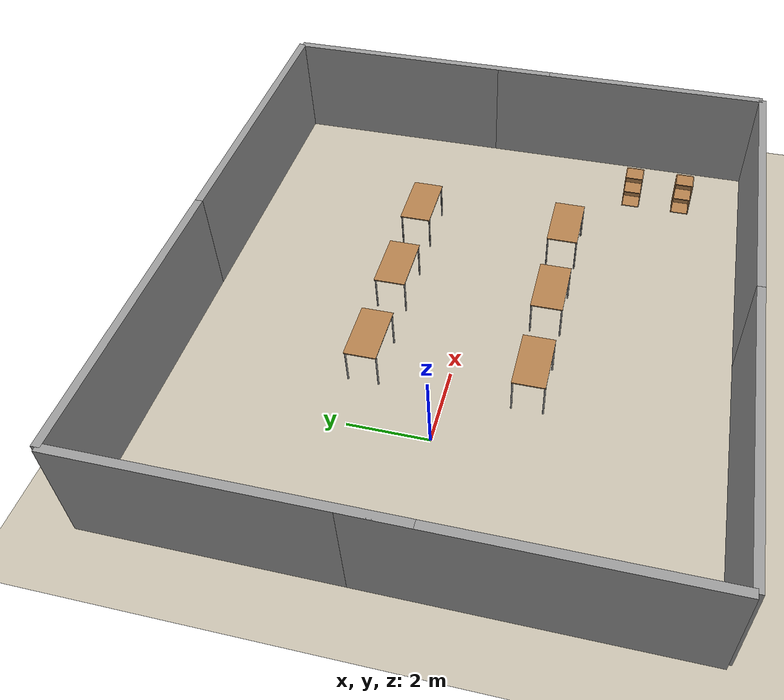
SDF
<sdf version="1.8">
 <world name="h1_world">
  <physics name="1ms" type="ignored">
   <max_step_size>0.001</max_step_size>
   <real_time_factor>1.0</real_time_factor>
  </physics>
  <plugin filename="gz-sim-physics-system" name="gz::sim::systems::Physics"/>
  <plugin filename="gz-sim-user-commands-system" name="gz::sim::systems::UserCommands"/>
  <plugin filename="gz-sim-scene-broadcaster-system" name="gz::sim::systems::SceneBroadcaster"/>
  <plugin filename="gz-sim-contact-system" name="gz::sim::systems::Contact"/>
  <plugin filename="gz-sim-imu-system" name="gz::sim::systems::Imu"/>
  <plugin filename="gz-sim-sensors-system" name="gz::sim::systems::Sensors">
   <render_engine>ogre</render_engine>
  </plugin>
  <scene><ambient>0.65 0.65 0.65 1</ambient><background>0.85 0.86 0.9 1</background></scene>
  <light type="directional" name="sun">
   <pose>0 0 10 0 0 0</pose>
   <diffuse>0.95 0.95 0.95 1</diffuse>
   <specular>0.2 0.2 0.2 1</specular>
   <direction>-0.3 0.3 -0.9</direction>
  </light>
  <model name="ground_plane">
   <static>true</static>
   <link name="link">
    <collision name="collision">
     <geometry><plane><normal>0 0 1</normal><size>100 100</size></plane></geometry>
     <surface><friction><ode><mu>100</mu><mu2>50</mu2></ode></friction></surface>
    </collision>
    <visual name="visual">
     <geometry><plane><normal>0 0 1</normal><size>100 100</size></plane></geometry>
     <material>
      <ambient>0.7 0.68 0.62 1</ambient>
      <diffuse>0.78 0.75 0.68 1</diffuse>
      <specular>0.1 0.1 0.1 1</specular>
     </material>
    </visual>
   </link>
  </model>
  <include><name>wall_l1</name><uri>model://grey_wall</uri><pose>0 6.75 0 0 0 0</pose></include>
  <include><name>wall_l2</name><uri>model://grey_wall</uri><pose>7.5 6.75 0 0 0 0</pose></include>
  <include><name>wall_r1</name><uri>model://grey_wall</uri><pose>0 -6.75 0 0 0 0</pose></include>
  <include><name>wall_r2</name><uri>model://grey_wall</uri><pose>7.5 -6.75 0 0 0 0</pose></include>
  <include><name>wall_back1</name><uri>model://grey_wall</uri><pose>11.25 3 0 0 0 1.5708</pose></include>
  <include><name>wall_back2</name><uri>model://grey_wall</uri><pose>11.25 -3 0 0 0 1.5708</pose></include>
  <include><name>wall_front1</name><uri>model://grey_wall</uri><pose>-3.75 3 0 0 0 1.5708</pose></include>
  <include><name>wall_front2</name><uri>model://grey_wall</uri><pose>-3.75 -3 0 0 0 1.5708</pose></include>
  <include><name>desk_a1</name><uri>model://table</uri><pose>2 2 0 0 0 0</pose></include>
  <include><name>desk_a2</name><uri>model://table</uri><pose>4.5 2 0 0 0 0</pose></include>
  <include><name>desk_a3</name><uri>model://table</uri><pose>7 2 0 0 0 0</pose></include>
  <include><name>desk_b1</name><uri>model://table</uri><pose>2 -2 0 0 0 0</pose></include>
  <include><name>desk_b2</name><uri>model://table</uri><pose>4.5 -2 0 0 0 0</pose></include>
  <include><name>desk_b3</name><uri>model://table</uri><pose>7 -2 0 0 0 0</pose></include>
  <include><name>cabinet_1</name><uri>model://cabinet</uri><pose>9.5 -5 0 0 0 0</pose></include>
  <include><name>cabinet_2</name><uri>model://cabinet</uri><pose>9.5 -3.6 0 0 0 0</pose></include>
 </world>
</sdf>

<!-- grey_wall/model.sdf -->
<sdf version="1.5">
  <model name="grey_wall">
    <static>true</static>
    <link name="link">
      <pose>0 0 1.4 0 0 0</pose>
      <collision name="collision">
        <geometry>
          <box>
            <size>7.5 0.2 2.8</size>
          </box>
        </geometry>
      </collision>
      <visual name="visual">
        <cast_shadows>false</cast_shadows>
        <geometry>
          <box>
            <size>7.5 0.2 2.8</size>
          </box>
        </geometry>
        <material>
          <script>
            <uri>model://../model_source/models/grey_wall/materials/scripts</uri>
            <uri>model://../model_source/models/grey_wall/materials/textures</uri>
            <name>vrc/grey_wall</name>
          </script>
        </material>
      </visual>
    </link>
  </model>
</sdf>

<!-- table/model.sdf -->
<sdf version="1.5">
  <model name="table">
    <static>true</static>
    <link name="link">
      <collision name="surface">
        <pose>0 0 1.0 0 0 0</pose>
        <geometry>
          <box>
            <size>1.5 0.8 0.03</size>
          </box>
        </geometry>
        <surface>
          <friction>
            <ode>
              <mu>0.6</mu>
              <mu2>0.6</mu2>
            </ode>
          </friction>
        </surface>
      </collision>
      <visual name="visual1">
        <pose>0 0 1.0 0 0 0</pose>
        <geometry>
          <box>
            <size>1.5 0.8 0.03</size>
          </box>
        </geometry>
        <material>
          <script>
            <uri>model://media/materials/scripts/gazebo.material</uri>
            <name>Gazebo/Wood</name>
          </script>
        </material>
      </visual>
      <collision name="front_left_leg">
        <pose>0.68 0.38 0.5 0 0 0</pose>
        <geometry>
          <cylinder>
            <radius>0.02</radius>
            <length>1.0</length>
          </cylinder>
        </geometry>
      </collision>
      <visual name="front_left_leg">
        <pose>0.68 0.38 0.5 0 0 0</pose>
        <geometry>
          <cylinder>
            <radius>0.02</radius>
            <length>1.0</length>
          </cylinder>
        </geometry>
        <material>
          <script>
            <uri>model://media/materials/scripts/gazebo.material</uri>
            <name>Gazebo/Grey</name>
          </script>
        </material>
      </visual>
      <collision name="front_right_leg">
        <pose>0.68 -0.38 0.5 0 0 0</pose>
        <geometry>
          <cylinder>
            <radius>0.02</radius>
            <length>1.0</length>
          </cylinder>
        </geometry>
      </collision>
      <visual name="front_right_leg">
        <pose>0.68 -0.38 0.5 0 0 0</pose>
        <geometry>
          <cylinder>
            <radius>0.02</radius>
            <length>1.0</length>
          </cylinder>
        </geometry>
        <material>
          <script>
            <uri>model://media/materials/scripts/gazebo.material</uri>
            <name>Gazebo/Grey</name>
          </script>
        </material>
      </visual>
      <collision name="back_right_leg">
        <pose>-0.68 -0.38 0.5 0 0 0</pose>
        <geometry>
          <cylinder>
            <radius>0.02</radius>
            <length>1.0</length>
          </cylinder>
        </geometry>
      </collision>
      <visual name="back_right_leg">
        <pose>-0.68 -0.38 0.5 0 0 0</pose>
        <geometry>
          <cylinder>
            <radius>0.02</radius>
            <length>1.0</length>
          </cylinder>
        </geometry>
        <material>
          <script>
            <uri>model://media/materials/scripts/gazebo.material</uri>
            <name>Gazebo/Grey</name>
          </script>
        </material>
      </visual>
      <collision name="back_left_leg">
        <pose>-0.68 0.38 0.5 0 0 0</pose>
        <geometry>
          <cylinder>
            <radius>0.02</radius>
            <length>1.0</length>
          </cylinder>
        </geometry>
      </collision>
      <visual name="back_left_leg">
        <pose>-0.68 0.38 0.5 0 0 0</pose>
        <geometry>
          <cylinder>
            <radius>0.02</radius>
            <length>1.0</length>
          </cylinder>
        </geometry>
        <material>
          <script>
            <uri>model://media/materials/scripts/gazebo.material</uri>
            <name>Gazebo/Grey</name>
          </script>
        </material>
      </visual>
    </link>
  </model>
</sdf>

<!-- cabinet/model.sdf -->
<sdf version="1.5">
  <model name="cabinet">
    <static>true</static>
    <link name="cabinet_bottom_plate">
      <inertial>
        <pose>0 0 -1 0 0 0</pose>
        <inertia>
          <ixx>2.050000</ixx>
          <ixy>0</ixy>
          <ixz>0</ixz>
          <iyy>2.050000</iyy>
          <iyz>0</iyz>
          <izz>2.050000</izz>
        </inertia>
        <mass>25.000000</mass>
      </inertial>
      <collision name="cabinet_bottom_plate_geom">
        <pose>0 0 0.010000 0 0 0</pose>
        <geometry>
          <box>
            <size>0.450000 0.450000 0.020000</size>
          </box>
        </geometry>
      </collision>
      <visual name="cabinet_bottom_plate_geom_visual">
        <pose>0 0 0.010000 0 0 0</pose>
        <geometry>
          <box>
            <size>0.450000 0.450000 0.020000</size>
          </box>
        </geometry>
        <material>
          <script>
            <uri>model://media/materials/scripts/gazebo.material</uri>
            <name>Gazebo/Wood</name>
          </script>
        </material>
      </visual>
      <collision name="cabinet_bottom_plate_geom_cabinet_back_plate">
        <pose>0.235000 0 0.510000 0 0 0</pose>
        <geometry>
          <box>
            <size>0.020000 0.450000 1.020000</size>
          </box>
        </geometry>
      </collision>
      <visual name="cabinet_bottom_plate_geom_cabinet_back_plate_visual">
        <pose>0.235000 0 0.510000 0 0 0</pose>
        <geometry>
          <box>
            <size>0.020000 0.450000 1.020000</size>
          </box>
        </geometry>
        <material>
          <script>
            <uri>model://media/materials/scripts/gazebo.material</uri>
            <name>Gazebo/Wood</name>
          </script>
        </material>
      </visual>
      <collision name="cabinet_bottom_plate_geom_cabinet_left_plate">
        <pose>0 0.235000 0.510000 0 0 0</pose>
        <geometry>
          <box>
            <size>0.450000 0.020000 1.020000</size>
          </box>
        </geometry>
      </collision>
      <visual name="cabinet_bottom_plate_geom_cabinet_left_plate_visual">
        <pose>0 0.235000 0.510000 0 0 0</pose>
        <geometry>
          <box>
            <size>0.450000 0.020000 1.020000</size>
          </box>
        </geometry>
        <material>
          <script>
            <uri>model://media/materials/scripts/gazebo.material</uri>
            <name>Gazebo/Wood</name>
          </script>
        </material>
      </visual>
      <collision name="cabinet_bottom_plate_geom_cabinet_middle_plate">
        <pose>0 0 0.510000 0 0 0</pose>
        <geometry>
          <box>
            <size>0.450000 0.450000 0.020000</size>
          </box>
        </geometry>
      </collision>
      <visual name="cabinet_bottom_plate_geom_cabinet_middle_plate_visual">
        <pose>0 0 0.510000 0 0 0</pose>
        <geometry>
          <box>
            <size>0.450000 0.450000 0.020000</size>
          </box>
        </geometry>
        <material>
          <script>
            <uri>model://media/materials/scripts/gazebo.material</uri>
            <name>Gazebo/Wood</name>
          </script>
        </material>
      </visual>
      <collision name="cabinet_bottom_plate_geom_cabinet_right_plate">
        <pose>0 -0.235000 0.510000 0 0 0</pose>
        <geometry>
          <box>
            <size>0.450000 0.020000 1.020000</size>
          </box>
        </geometry>
      </collision>
      <visual name="cabinet_bottom_plate_geom_cabinet_right_plate_visual">
        <pose>0 -0.235000 0.510000 0 0 0</pose>
        <geometry>
          <box>
            <size>0.450000 0.020000 1.020000</size>
          </box>
        </geometry>
        <material>
          <script>
            <uri>model://media/materials/scripts/gazebo.material</uri>
            <name>Gazebo/Wood</name>
          </script>
        </material>
      </visual>
      <collision name="cabinet_bottom_plate_geom_cabinet_top_plate">
        <pose>0 0 1.010000 0 0 0</pose>
        <geometry>
          <box>
            <size>0.450000 0.450000 0.020000</size>
          </box>
        </geometry>
      </collision>
      <visual name="cabinet_bottom_plate_geom_cabinet_top_plate_visual">
        <pose>0 0 1.010000 0 0 0</pose>
        <geometry>
          <box>
            <size>0.450000 0.450000 0.020000</size>
          </box>
        </geometry>
        <material>
          <script>
            <uri>model://media/materials/scripts/gazebo.material</uri>
            <name>Gazebo/Wood</name>
          </script>
        </material>
      </visual>
    </link>
  </model>
</sdf>
